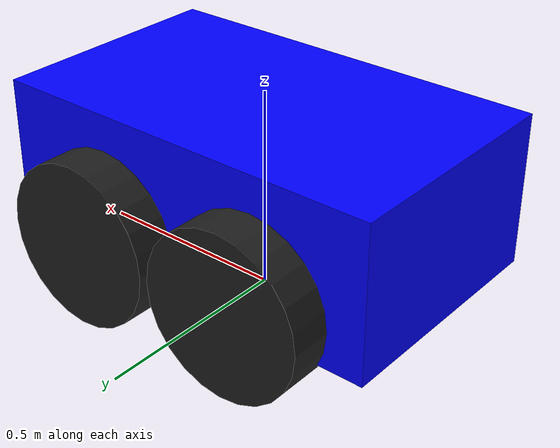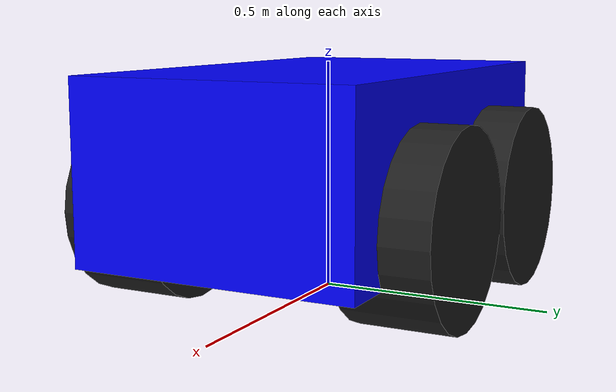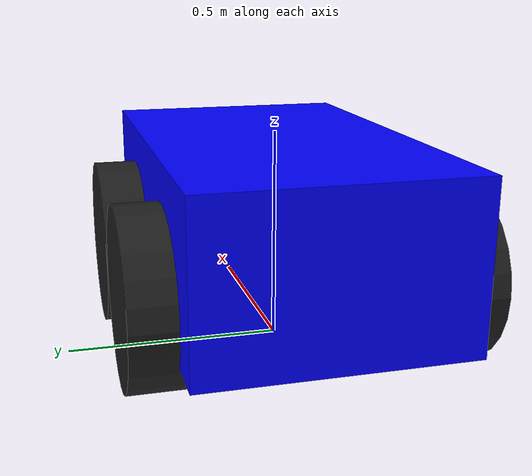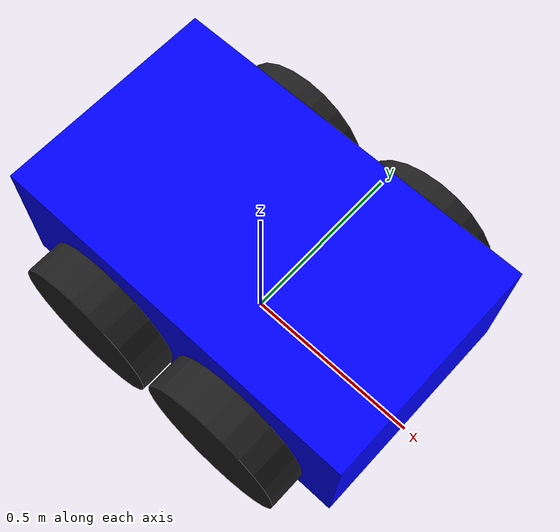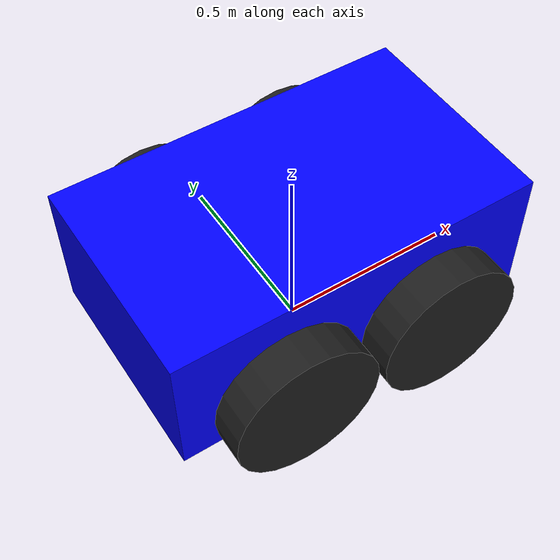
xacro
<?xml version="1.0"?>

<robot xmlns:sensor="http://playerstage.sourceforge.net/gazebo/xmlschema/#sensor"
       xmlns:controller="http://playerstage.sourceforge.net/gazebo/xmlschema/#controller"
       xmlns:interface="http://playerstage.sourceforge.net/gazebo/xmlschema/#interface"
       xmlns:xacro="http://ros.org/wiki/xacro"
       name="skj">

  <!-- Chassis -->
	<link name="base_link">
		<inertial>
			<mass value="70"/>
			<origin xyz="0 0 0.3"/>
			<inertia ixx="0.3338" ixy="0.0" ixz="0.0"
				 iyy="0.4783" iyz="0.0"
				 izz="0.3338"/>
		</inertial>
		<visual>
		  <origin xyz="0 0 0.3" rpy="0 0 0"/>
		  <geometry name="skj_geom">
     	  <box size="1.000 0.600 0.376" />
		  </geometry>
		  <material name="BodyBlue">
			  <color rgba="0.0 0.0 1.0 1.0"/>
		  </material>
	  </visual>
	<collision>
		<origin xyz="0 0 0.3" rpy="0 0 0"/>
		<geometry>
         		<box size="1.000 0.600 0.376"  />
		</geometry>
	</collision>
	</link>
	<gazebo reference="base_link">
		<material value="Gazebo/Blue"/>
	</gazebo>

<xacro:macro name="skj_wheel" params="end side endreflect sidereflect">

    <link name="skj_${end}_${side}_wheel">
      <inertial>
        <mass value="4.2"/>
        <origin xyz="0 0 0.1"/>
        <inertia ixx="0.012411765597" ixy="0" ixz="0"
           iyy="0.015218160428" iyz="0" izz="0.011763977943"/>
      </inertial>
      <visual>
        <origin xyz="0 0 0.1" rpy="-1.570795 0 0"/>
        <geometry name="skj_wheel_geom">
          <cylinder radius="0.2" length="0.2"/>
        </geometry>
        <material name="WheelBlack">
          <color rgba="0.117 0.117 0.117 1"/>
        </material>
      </visual>
      <collision>
        <origin xyz="0 0 0.1" rpy="${-3.1415927/2} 0 0"/>
        <geometry>
          <cylinder radius="0.2" length="0.2"/>
        </geometry>
      </collision>
    </link>

    <gazebo reference="skj_${end}_${side}_wheel">
      <material value="Gazebo/Black"/>
    </gazebo>

    <joint name="skj_${end}_${side}_wheel_joint" type="continuous">
      <axis xyz="0 1 0"/>
      <anchor xyz="0 0 0"/>
      <limit effort="100" velocity="100" />
      <joint_properties damping="0.7"/>
      <origin xyz="${endreflect} ${sidereflect} 0.1" rpy="0 0 0"/>
      <parent link="base_link"/>
      <child link="skj_${end}_${side}_wheel"/>
    </joint>

    <gazebo reference="skj_${end}_${side}_wheel">
      <kp>1000000.0</kp> <!-- kp and kd for rubber -->
      <kd>100.0</kd>
      <mu1>1.0</mu1> <!-- was 10.0 -->
      <mu2>1.0</mu2>
      <!-- todo how to get these ODE params in: slip1, slip2 -->
      <!-- fdir1 0 1 0 /fdir1 --> <!-- see http://github.com/MobileRobots/amr-ros-config/issues/6 -->
      <maxVel>1.0</maxVel>
      <minDepth>0.00</minDepth>
      <material value="Gazebo/Black" />
    </gazebo>

</xacro:macro>

  <xacro:skj_wheel end="front" side="left" endreflect="0.21" sidereflect="0.3" />
  <xacro:skj_wheel end="front" side="right" endreflect="0.21" sidereflect="-0.3" />
  <xacro:skj_wheel end="back" side="left" endreflect="-0.21" sidereflect="0.3" />
  <xacro:skj_wheel end="back" side="right" endreflect="-0.21" sidereflect="-0.3" />

  <gazebo>
    <plugin name="skid_steer_drive_controller" filename="libgazebo_ros_skid_steer_drive.so">
      <updateRate>100.0</updateRate>
      <robotNamespace>/</robotNamespace>
      <leftFrontJoint>skj_front_left_wheel_joint</leftFrontJoint>
      <rightFrontJoint>skj_front_right_wheel_joint</rightFrontJoint>
      <leftRearJoint>skj_back_left_wheel_joint</leftRearJoint>
      <rightRearJoint>skj_back_right_wheel_joint</rightRearJoint>
      <wheelSeparation>0.68</wheelSeparation>
      <wheelDiameter>0.40</wheelDiameter>
      <robotBaseFrame>base_link</robotBaseFrame>
      <torque>400</torque>
      <MaxForce>5.0</MaxForce>
      <commandTopic>cmd_vel</commandTopic>
      <odometryTopic>odom</odometryTopic>
      <odometryFrame>odom</odometryFrame>
      <broadcastTF>1</broadcastTF>
    </plugin>
  </gazebo>

</robot>
